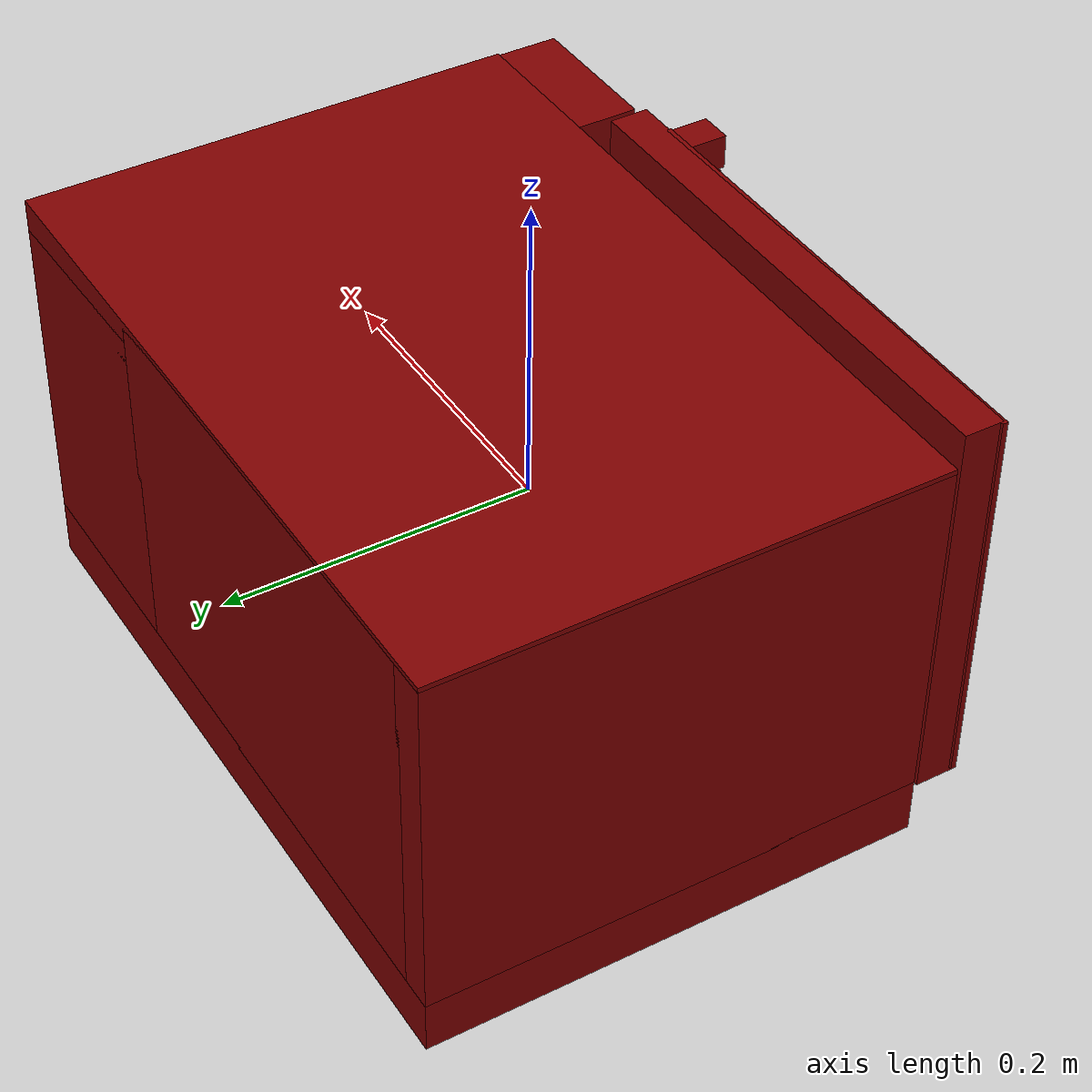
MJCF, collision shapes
<mujoco model="model">
  <compiler angle="radian"/>
  <asset>
    <mesh file="visuals/door.obj" name="door_vis"/>
    <mesh file="visuals/door_Clear.obj" name="door_Clear_vis"/>
    <mesh file="visuals/Body001.obj" name="Body001_vis"/>
    <mesh file="visuals/Disc001.obj" name="Disc001_vis"/>
    <texture file="visuals/T_BC001.png" name="Body001_material" type="2d"/>
    <material name="Body001_material" rgba="1 1 1 1.0" texture="Body001_material" shininess="2" specular="2"/>
    <texture file="visuals/T_BC001.png" name="door_material" type="2d"/>
    <material name="door_material" rgba="1 1 1 1.0" texture="door_material" shininess="2" specular="2"/>
    <material name="door_Clear_material" rgba="0.05796752870082855 0.05796752870082855 0.05796752870082855 0.7475006580352783" shininess="1" specular="1"/>
    <texture file="visuals/T_BC001.png" name="Disc001_material" type="2d"/>
    <material name="Disc001_material" rgba="1 1 1 1.0" texture="Disc001_material" shininess="1" specular="1"/>
  </asset>
  <default>
    <default class="visual">
      <geom conaffinity="0" contype="0" group="1" type="mesh"/>
    </default>
    <default class="collision">
      <geom group="0" rgba="0.5 0 0 0.5"/>
    </default>
    <default class="spawn">
      <geom group="0" rgba="1 1 1 0.5" contype="0" conaffinity="0"/>
      <site group="0" rgba="1 1 1 0.5"/>
    </default>
    <default class="region">
      <geom group="1" conaffinity="0" contype="0" rgba="0 1 0 0"/>
    </default>
  </default>
  <worldbody>
    <body>
      <body name="object">
        <geom class="collision" type="box" pos="-0.058371614664793015 0.0318773053586483 -0.08095654845237732" size="0.14500591158866882 0.14500591158866882 0.002778799971565604" quat="1.0 0.0 0.0 0.0" name="tray" rgba="0 1 0 0.5"/>
        <geom class="collision" type="box" pos="0.16958077251911163 -0.1602775603532791 -0.10801083594560623" size="0.011668359860777855 0.0011690054088830948 0.008088325150310993" quat="1.0 0.0 0.0 0.0" name="start_button" rgba="0.0 0.5 0 0.5"/>
        <geom class="collision" type="box" pos="0.2198667973279953 -0.1602194905281067 -0.1076623946428299" size="0.011668365448713303 0.0011690057581290603 0.008088327944278717" quat="1.0 0.0 0.0 0.0" name="stop_button" rgba="0.0 0.5 0 0.5"/>
        <geom mesh="Body001_vis" type="mesh" solimp="0.998 0.998 0.001" solref="0.001 1" density="100" friction="0.95 0.3 0.1" class="visual" material="Body001_material"/>
        <geom class="collision" type="box" pos="0.0 0.043119873851537704 0.12148598581552505" size="0.23650962114334106 0.16110411286354065 0.01487767044454813" quat="1.0 0.0 0.0 0.0"/>
        <geom class="collision" type="box" pos="0.0 0.043119873851537704 -0.11680135130882263" size="0.23650962114334106 0.16110411286354065 0.01878776215016842" quat="1.0 0.0 0.0 0.0"/>
        <geom class="collision" type="box" pos="-0.22456876933574677 0.043119873851537704 0.016399994492530823" size="0.011940856464207172 0.16110411286354065 0.1167171373963356" quat="1.0 0.0 0.0 0.0"/>
        <geom class="collision" type="box" pos="0.166756734251976 0.043119873851537704 0.016399994492530823" size="0.06975289434194565 0.16110411286354065 0.1167171373963356" quat="1.0 0.0 0.0 0.0"/>
        <geom class="collision" type="box" pos="0.18770870566368103 -0.13562971353530884 0.003681603819131851" size="0.047980546951293945 0.022959735244512558 0.13195550441741943" quat="1.0 0.0 0.0 0.0"/>
        <geom class="collision" type="box" pos="-0.05739830434322357 0.1929461807012558 0.016399994492530823" size="0.1580510437488556 0.011277805082499981 0.1167171373963356" quat="1.0 0.0 0.0 0.0"/>
        <body name="door">
          <joint axis="0.0 0.0 1.0" pos="-0.21424956619739532 -0.14400917291641235 0.00438564270734787" limited="true" name="microjoint" range="-1.5707963267948966 0.0" type="hinge" damping="1" frictionloss="1" armature=".01" stiffness="0.05"/>
          <geom mesh="door_vis" type="mesh" solimp="0.998 0.998 0.001" solref="0.001 1" density="100" friction="0.95 0.3 0.1" class="visual" material="door_material"/>
          <geom class="collision" type="box" pos="-0.040856849402189255 -0.15110787749290466 0.0036416524089872837" size="0.17593155801296234 0.012856208719313145 0.13272200524806976" quat="1.0 0.0 0.0 0.0"/>
          <geom class="collision" type="box" pos="0.12089768797159195 -0.18652725219726562 0.10579008609056473" size="0.011190413497388363 0.02029988169670105 0.011633019894361496" quat="1.0 0.0 0.0 0.0"/>
          <geom class="collision" type="box" pos="0.12089768797159195 -0.18739499151706696 -0.10950562357902527" size="0.011190413497388363 0.021298905834555626 0.012094538658857346" quat="1.0 0.0 0.0 0.0"/>
          <geom class="collision" type="box" pos="0.12089768797159195 -0.19521620869636536 -0.002348280046135187" size="0.011190413497388363 0.00912703201174736 0.09482404589653015" quat="1.0 0.0 0.0 0.0" name="door_handle"/>
          <body name="door_Clear">
            <geom mesh="door_Clear_vis" type="mesh" solimp="0.998 0.998 0.001" solref="0.001 1" density="100" friction="0.95 0.3 0.1" class="visual" material="door_Clear_material"/>
            <geom class="collision" type="box" pos="-0.05467239394783974 -0.16344687342643738 0.005035038571804762" size="0.1639990210533142 0.0018047845223918557 0.13132861256599426" quat="1.0 0.0 0.0 0.0"/>
          </body>
        </body>
        <body name="Disc001">
          <joint axis="0.0 0.0 -1.0" pos="-0.05779366195201874 0.03169524669647217 -0.08503100275993347" limited="false" name="Disc001_joint" range="0 360" type="hinge" damping="1" frictionloss="1" armature=".01" stiffness="0.05"/>
          <geom mesh="Disc001_vis" type="mesh" solimp="0.998 0.998 0.001" solref="0.001 1" density="100" friction="0.95 0.3 0.1" class="visual" material="Disc001_material"/>
          <geom class="collision" type="cylinder" pos="-0.058371614664793015 0.0318773053586483 -0.08801419287919998" size="0.14500591158866882 0.0027788018342107534" quat="1.0 0.0 0.0 0.0"/>
        </body>
        <geom class="region" name="reg_main" type="box" pos="0.0 0.017845898866653442 0.0" size="0.23650962114334106 0.1863780915737152 0.1363636553287506"/>
        <geom class="region" name="reg_int" type="box" pos="-0.059023819863796234 0.016476605087518692 0.003946222364902496" size="0.15059039741754532 0.13189783319830894 0.09915503859519958"/>
      </body>
    </body>
  </worldbody>
  <actuator>
    <motor name="microjoint_actuator" joint="microjoint" gear="10"/>
    <motor name="Disc001_joint_actuator" joint="Disc001_joint" gear="10"/>
  </actuator>
</mujoco>
